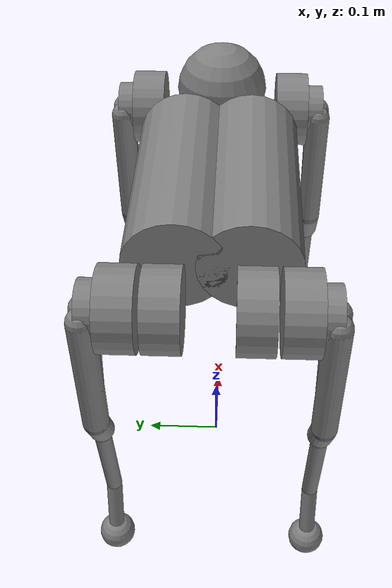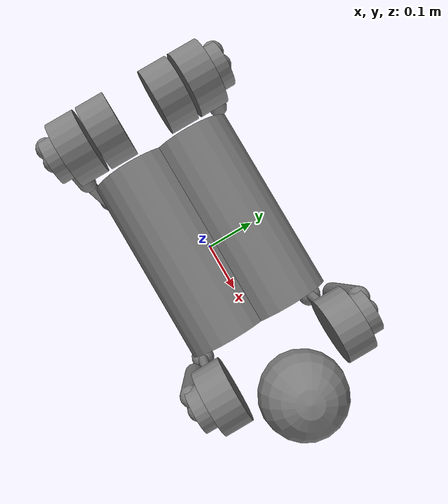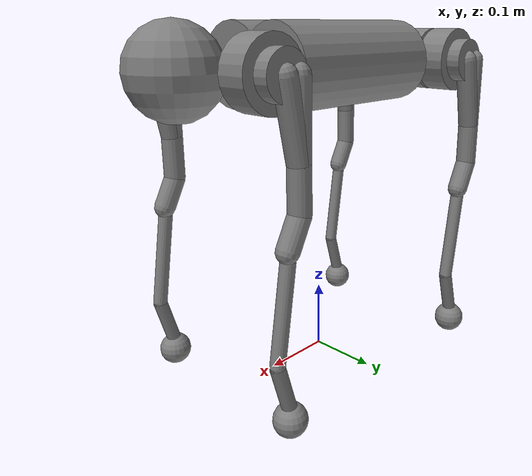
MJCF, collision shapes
<mujoco model="go1">
  <compiler angle="radian" meshdir="../../../external_deps/mujoco_menagerie/unitree_go1/assets" autolimits="true"/>

  <default>
    <default class="go1">
      <geom contype="0" conaffinity="0"/>
      <default class="abduction">
        <joint axis="1 0 0" range="-0.863 0.863"/>
      </default>
      <default class="hip">
        <joint axis="0 1 0" range="-0.686 4.501"/>
      </default>
      <default class="knee">
        <joint axis="0 1 0" range="-2.818 -0.888"/>
      </default>
      <default class="visual">
        <geom type="mesh" contype="0" conaffinity="0" group="2" material="dark"/>
      </default>
      <default class="collision">
        <geom group="3" type="capsule"/>
        <default class="hip_left1">
          <geom size="0.046 0.02" pos="0 0.045 0" quat="1 1 0 0" type="cylinder"/>
        </default>
        <default class="hip_left2">
          <geom size="0.031 0.02" pos="0 0.065 0" quat="1 1 0 0" type="cylinder"/>
        </default>
        <default class="hip_left3">
          <geom size="0.046 0.02" quat="1 1 0 0" type="cylinder"/>
        </default>
        <default class="hip_right1">
          <geom size="0.046 0.02" pos="0 -0.045 0" quat="1 1 0 0" type="cylinder"/>
        </default>
        <default class="hip_right2">
          <geom size="0.031 0.02" pos="0 -0.065 0" quat="1 1 0 0" type="cylinder"/>
        </default>
        <default class="hip_right3">
          <geom size="0.046 0.02" quat="1 1 0 0" type="cylinder"/>
        </default>
        <default class="thigh1">
          <geom size="0.015" fromto="-0.02 0 0 -0.02 0 -0.16"/>
        </default>
        <default class="thigh2">
          <geom size="0.015" fromto="0 0 0 -0.02 0 -0.1"/>
        </default>
        <default class="thigh3">
          <geom size="0.015" fromto="-0.02 0 -0.16 0 0 -0.2"/>
        </default>
        <default class="calf1">
          <geom size="0.01" fromto="0 0 0 0.02 0 -0.13"/>
        </default>
        <default class="calf2">
          <geom size="0.01" fromto="0.02 0 -0.13 0 0 -0.2"/>
        </default>
        <default class="foot">
          <geom type="sphere" size="0.023" pos="0 0 -0.213"/>
        </default>
      </default>
    </default>
  </default>

  <asset>
    <material name="dark" rgba="0.2 0.2 0.2 1"/>

    <mesh class="go1" file="trunk.stl"/>
    <mesh class="go1" file="hip.stl"/>
    <mesh class="go1" file="thigh_mirror.stl"/>
    <mesh class="go1" file="calf.stl"/>
    <mesh class="go1" file="thigh.stl"/>
  </asset>

  <worldbody>
    <light pos="0 0 1.5" dir="0 0 -1" type="directional"/>
    <body name="trunk" pos="0 0 0.445" childclass="go1">
      <light pos="0 0 2" mode="trackcom"/>
      <camera name="tracking" pos="0.846 -1.3 0.316" xyaxes="0.866 0.500 0.000 -0.171 0.296 0.940" mode="trackcom"/>
      <camera name="top" pos="-1 0 1" xyaxes="0 -1 0 0.7 0 0.7" mode="trackcom"/>
      <camera name="side" pos="0 -1 .3" xyaxes="1 0 0 0 1 2" mode="trackcom"/>
      <camera name="back" pos="-1 0 .3" xyaxes="0 -1 0 1 0 2" mode="trackcom"/>
      <site name="head" pos="0.3 0 0" rgba="1 0 0 1" size="0.02" group="5"/>
      <inertial pos="0.0223 0.002 -0.0005" quat="-0.00342088 0.705204 0.000106698 0.708996" mass="5.204"
        diaginertia="0.0716565 0.0630105 0.0168101"/>
      <freejoint/>
      <geom class="visual" mesh="trunk"/>
      <geom name="trunk_collision1" class="collision" quat="1 0 1 0" pos="0 -0.04 0" size="0.058 0.125" type="cylinder"/>
      <geom name="trunk_collision2" class="collision" quat="1 0 1 0" pos="0 +0.04 0" size="0.058 0.125" type="cylinder"/>
      <geom name="head_collision" class="collision" type="sphere" size="0.06" pos="0.24 0 0"/>
      <site name="imu" pos="-0.01592 -0.06659 -0.00617" group="5"/>
      <body name="FR_hip" pos="0.1881 -0.04675 0">
        <inertial pos="-0.0049166 0.00762615 -8.865e-05" quat="0.507341 0.514169 0.495027 0.482891" mass="0.68"
          diaginertia="0.000734064 0.000468438 0.000398719"/>
        <joint class="abduction" name="FR_hip_joint"/>
        <geom class="visual" mesh="hip" quat="1 0 0 0"/>
        <geom name="FR_hip_collision1" class="hip_right1"/>
        <geom name="FR_hip_collision2" class="hip_right2"/>
        <body name="FR_thigh" pos="0 -0.08 0">
          <inertial pos="-0.00304722 0.019315 -0.0305004" quat="0.65243 -0.0272313 0.0775126 0.753383" mass="1.009"
            diaginertia="0.00478717 0.00460903 0.000709268"/>
          <joint class="hip" name="FR_thigh_joint"/>
          <geom class="visual" mesh="thigh_mirror"/>
          <geom name="FR_thigh_collision1" class="thigh1"/>
          <geom name="FR_thigh_collision2" class="thigh2"/>
          <geom name="FR_thigh_collision3" class="thigh3"/>
          <body name="FR_calf" pos="0 0 -0.213">
            <inertial pos="0.00429862 0.000976676 -0.146197" quat="0.691246 0.00357467 0.00511118 0.722592"
              mass="0.195862" diaginertia="0.00149767 0.00148468 3.58427e-05"/>
            <joint class="knee" name="FR_calf_joint"/>
            <geom class="visual" mesh="calf"/>
            <geom name="FR_calf_collision1" class="calf1"/>
            <geom name="FR_calf_collision2" class="calf2"/>
            <geom name="FR" class="foot"/>
            <site name="FR" pos="0 0 -0.213" type="sphere" size="0.023" group="5"/>
          </body>
        </body>
      </body>
      <body name="FL_hip" pos="0.1881 0.04675 0">
        <inertial pos="-0.0049166 -0.00762615 -8.865e-05" quat="0.482891 0.495027 0.514169 0.507341" mass="0.68"
          diaginertia="0.000734064 0.000468438 0.000398719"/>
        <joint class="abduction" name="FL_hip_joint"/>
        <geom class="visual" mesh="hip"/>
        <geom name="FL_hip_collision1" class="hip_left1"/>
        <geom name="FL_hip_collision2" class="hip_left2"/>
        <body name="FL_thigh" pos="0 0.08 0">
          <inertial pos="-0.00304722 -0.019315 -0.0305004" quat="0.753383 0.0775126 -0.0272313 0.65243" mass="1.009"
            diaginertia="0.00478717 0.00460903 0.000709268"/>
          <joint class="hip" name="FL_thigh_joint"/>
          <geom class="visual" mesh="thigh"/>
          <geom name="FL_thigh_collision1" class="thigh1"/>
          <geom name="FL_thigh_collision2" class="thigh2"/>
          <geom name="FL_thigh_collision3" class="thigh3"/>
          <body name="FL_calf" pos="0 0 -0.213">
            <inertial pos="0.00429862 0.000976676 -0.146197" quat="0.691246 0.00357467 0.00511118 0.722592"
              mass="0.195862" diaginertia="0.00149767 0.00148468 3.58427e-05"/>
            <joint class="knee" name="FL_calf_joint"/>
            <geom class="visual" mesh="calf"/>
            <geom name="FL_calf_collision1" class="calf1"/>
            <geom name="FL_calf_collision2" class="calf2"/>
            <geom name="FL" class="foot"/>
            <site name="FL" pos="0 0 -0.213" type="sphere" size="0.023" group="5"/>
          </body>
        </body>
      </body>
      <body name="RR_hip" pos="-0.1881 -0.04675 0">
        <inertial pos="0.0049166 0.00762615 -8.865e-05" quat="0.495027 0.482891 0.507341 0.514169" mass="0.68"
          diaginertia="0.000734064 0.000468438 0.000398719"/>
        <joint class="abduction" name="RR_hip_joint"/>
        <geom class="visual" quat="0 0 0 -1" mesh="hip"/>
        <geom name="RR_hip_collision1" class="hip_right1"/>
        <geom name="RR_hip_collision2" class="hip_right2"/>
        <geom name="RR_hip_collision3" class="hip_right3"/>
        <body name="RR_thigh" pos="0 -0.08 0">
          <inertial pos="-0.00304722 0.019315 -0.0305004" quat="0.65243 -0.0272313 0.0775126 0.753383" mass="1.009"
            diaginertia="0.00478717 0.00460903 0.000709268"/>
          <joint class="hip" name="RR_thigh_joint"/>
          <geom class="visual" mesh="thigh_mirror"/>
          <geom name="RR_thigh_collision1" class="thigh1"/>
          <geom name="RR_thigh_collision2" class="thigh2"/>
          <geom name="RR_thigh_collision3" class="thigh3"/>
          <body name="RR_calf" pos="0 0 -0.213">
            <inertial pos="0.00429862 0.000976676 -0.146197" quat="0.691246 0.00357467 0.00511118 0.722592"
              mass="0.195862" diaginertia="0.00149767 0.00148468 3.58427e-05"/>
            <joint class="knee" name="RR_calf_joint"/>
            <geom class="visual" mesh="calf"/>
            <geom name="RR_calf_collision1" class="calf1"/>
            <geom name="RR_calf_collision2" class="calf2"/>
            <geom name="RR" class="foot"/>
            <site name="RR" pos="0 0 -0.213" type="sphere" size="0.023" group="5"/>
          </body>
        </body>
      </body>
      <body name="RL_hip" pos="-0.1881 0.04675 0">
        <inertial pos="0.0049166 -0.00762615 -8.865e-05" quat="0.514169 0.507341 0.482891 0.495027" mass="0.68"
          diaginertia="0.000734064 0.000468438 0.000398719"/>
        <joint class="abduction" name="RL_hip_joint"/>
        <geom class="visual" quat="0 0 1 0" mesh="hip"/>
        <geom name="RL_hip_collision1" class="hip_left1"/>
        <geom name="RL_hip_collision2" class="hip_left2"/>
        <geom name="RL_hip_collision3" class="hip_left3"/>
        <body name="RL_thigh" pos="0 0.08 0">
          <inertial pos="-0.00304722 -0.019315 -0.0305004" quat="0.753383 0.0775126 -0.0272313 0.65243" mass="1.009"
            diaginertia="0.00478717 0.00460903 0.000709268"/>
          <joint class="hip" name="RL_thigh_joint"/>
          <geom class="visual" mesh="thigh"/>
          <geom name="RL_thigh_collision1" class="thigh1"/>
          <geom name="RL_thigh_collision2" class="thigh2"/>
          <geom name="RL_thigh_collision3" class="thigh3"/>
          <body name="RL_calf" pos="0 0 -0.213">
            <inertial pos="0.00429862 0.000976676 -0.146197" quat="0.691246 0.00357467 0.00511118 0.722592"
              mass="0.195862" diaginertia="0.00149767 0.00148468 3.58427e-05"/>
            <joint class="knee" name="RL_calf_joint"/>
            <geom class="visual" mesh="calf"/>
            <geom name="RL_calf_collision1" class="calf1"/>
            <geom name="RL_calf_collision2" class="calf2"/>
            <geom name="RL" class="foot"/>
            <site name="RL" pos="0 0 -0.213" type="sphere" size="0.023" group="5"/>
          </body>
        </body>
      </body>
    </body>
  </worldbody>
</mujoco>
